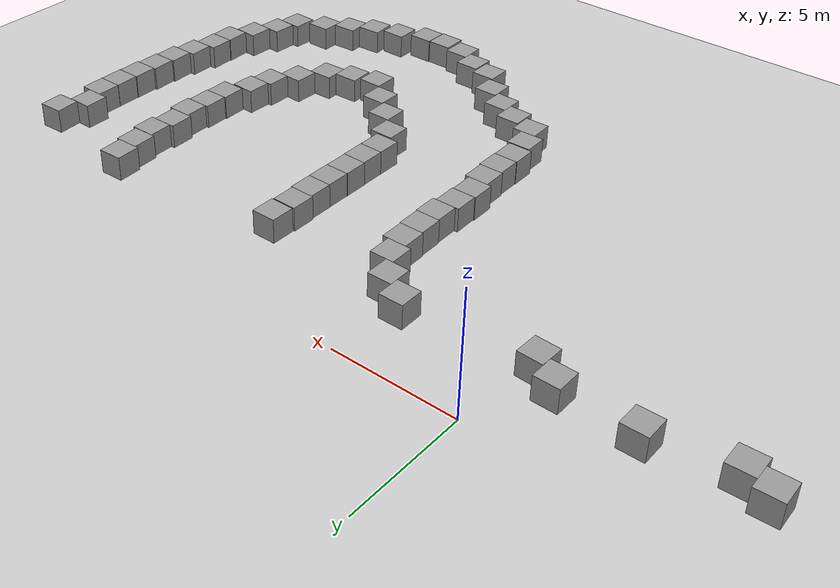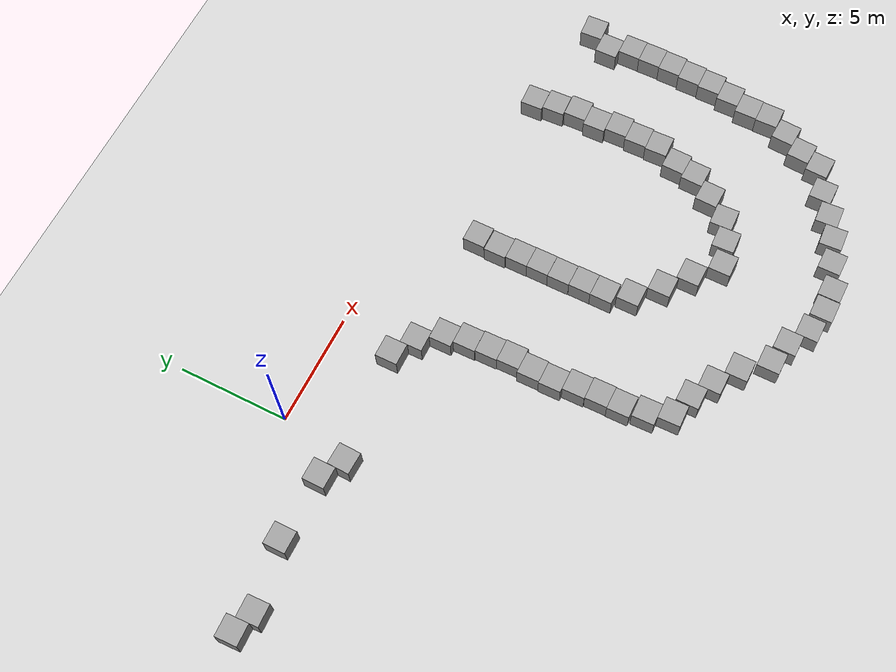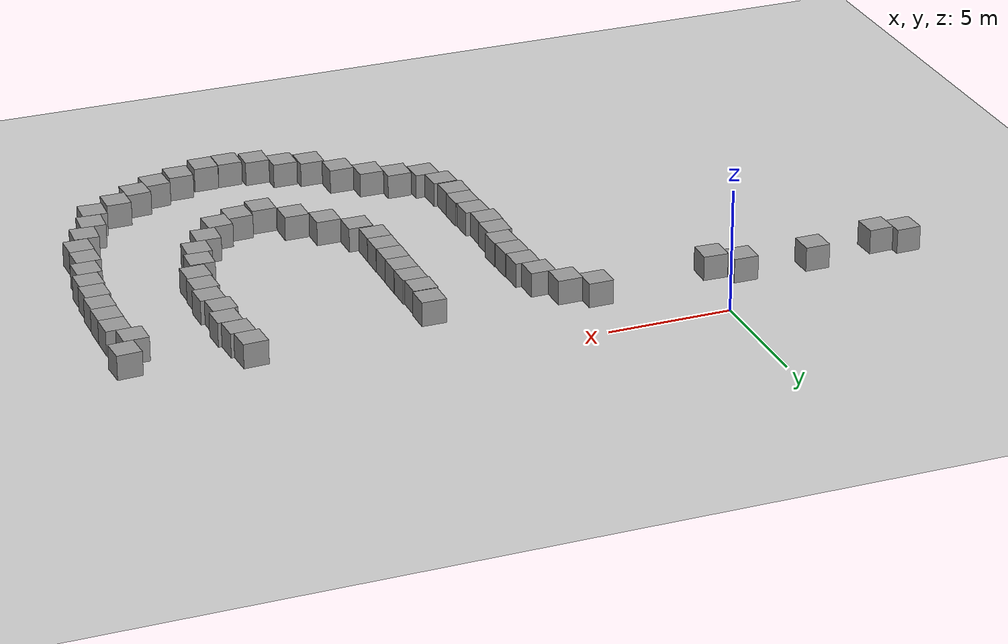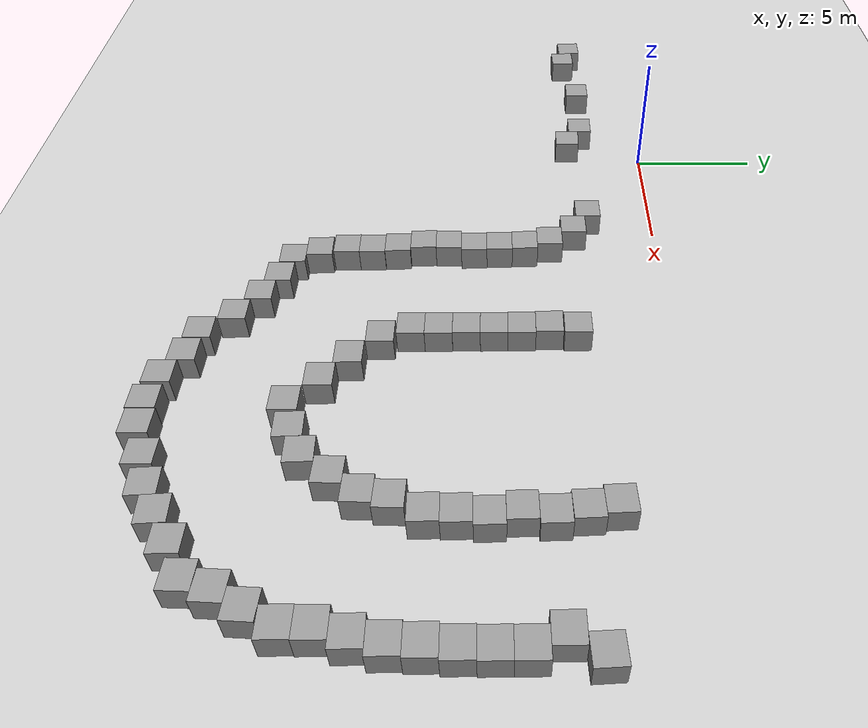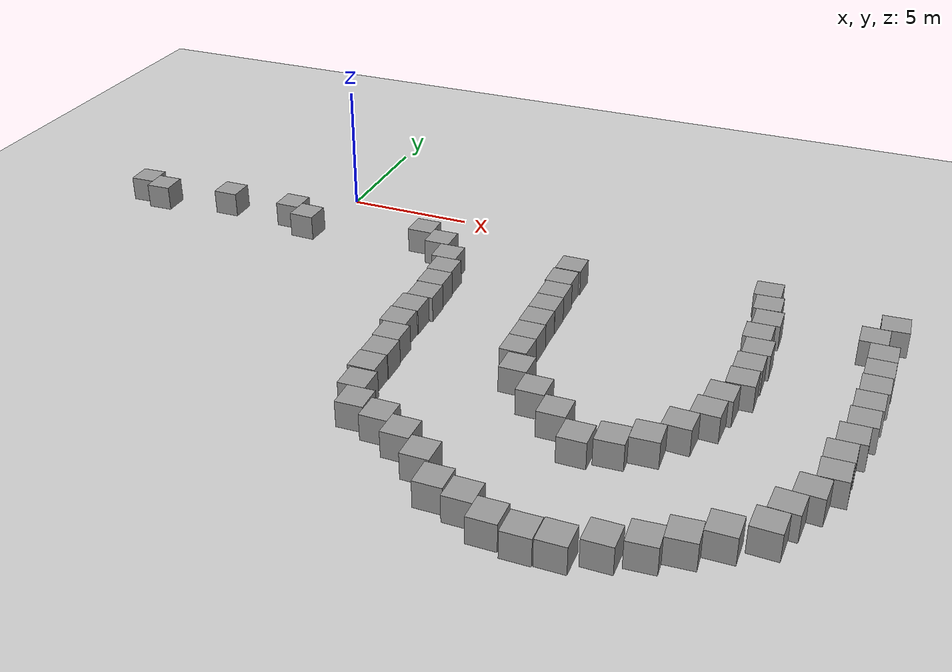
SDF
<sdf version="1.7">
 <world name="default">
  <model name="ground_plane">
   <static>1</static>
   <link name="link">
    <collision name="collision">
     <geometry><plane><normal>0 0 1</normal><size>100 100</size></plane></geometry>
     <surface>
      <contact><collide_bitmask>65535</collide_bitmask></contact>
      <friction><ode><mu>100</mu><mu2>50</mu2></ode></friction>
     </surface>
    </collision>
    <visual name="visual">
     <cast_shadows>0</cast_shadows>
     <geometry><plane><normal>0 0 1</normal><size>100 100</size></plane></geometry>
     <material>
      <script><uri>file://media/materials/scripts/gazebo.material</uri><name>Gazebo/Grey</name></script>
     </material>
    </visual>
   </link>
  </model>
  <model name="unit_box_5">
   <pose>-1.63227 -2.63169 0.5 0 0 -0.008028</pose>
   <link name="link">
    <inertial>
     <mass>1</mass>
     <inertia>
      <ixx>0.166667</ixx>
      <ixy>0</ixy>
      <ixz>0</ixz>
      <iyy>0.166667</iyy>
      <iyz>0</iyz>
      <izz>0.166667</izz>
     </inertia>
    </inertial>
    <collision name="collision"><geometry><box><size>1 1 1</size></box></geometry></collision>
    <visual name="visual">
     <geometry><box><size>1 1 1</size></box></geometry>
     <material>
      <script><name>Gazebo/Grey</name><uri>file://media/materials/scripts/gazebo.material</uri></script>
     </material>
    </visual>
   </link>
  </model>
  <model name="unit_box_16">
   <pose>4.39824 -2.70244 0.499995 -1e-05 -0 0.006225</pose>
   <link name="link">
    <inertial>
     <mass>1</mass>
     <inertia>
      <ixx>0.166667</ixx>
      <ixy>0</ixy>
      <ixz>0</ixz>
      <iyy>0.166667</iyy>
      <iyz>0</iyz>
      <izz>0.166667</izz>
     </inertia>
    </inertial>
    <collision name="collision"><geometry><box><size>1 1 1</size></box></geometry></collision>
    <visual name="visual">
     <geometry><box><size>1 1 1</size></box></geometry>
     <material>
      <script><name>Gazebo/Grey</name><uri>file://media/materials/scripts/gazebo.material</uri></script>
     </material>
    </visual>
   </link>
  </model>
  <model name="unit_box_17">
   <pose>5.40235 -3.34785 0.5 0 -0 0.006364</pose>
   <link name="link">
    <inertial>
     <mass>1</mass>
     <inertia>
      <ixx>0.166667</ixx>
      <ixy>0</ixy>
      <ixz>0</ixz>
      <iyy>0.166667</iyy>
      <iyz>0</iyz>
      <izz>0.166667</izz>
     </inertia>
    </inertial>
    <collision name="collision"><geometry><box><size>1 1 1</size></box></geometry></collision>
    <visual name="visual">
     <geometry><box><size>1 1 1</size></box></geometry>
     <material>
      <script><name>Gazebo/Grey</name><uri>file://media/materials/scripts/gazebo.material</uri></script>
     </material>
    </visual>
   </link>
  </model>
  <model name="unit_box_18">
   <pose>6.11715 -4.34222 0.5 0 -0 0.011712</pose>
   <link name="link">
    <inertial>
     <mass>1</mass>
     <inertia>
      <ixx>0.166667</ixx>
      <ixy>0</ixy>
      <ixz>0</ixz>
      <iyy>0.166667</iyy>
      <iyz>0</iyz>
      <izz>0.166667</izz>
     </inertia>
    </inertial>
    <collision name="collision"><geometry><box><size>1 1 1</size></box></geometry></collision>
    <visual name="visual">
     <geometry><box><size>1 1 1</size></box></geometry>
     <material>
      <script><name>Gazebo/Grey</name><uri>file://media/materials/scripts/gazebo.material</uri></script>
     </material>
    </visual>
   </link>
  </model>
  <model name="unit_box_19">
   <pose>6.3639 -5.3397 0.5 0 -0 0.011886</pose>
   <link name="link">
    <inertial>
     <mass>1</mass>
     <inertia>
      <ixx>0.166667</ixx>
      <ixy>0</ixy>
      <ixz>0</ixz>
      <iyy>0.166667</iyy>
      <iyz>0</iyz>
      <izz>0.166667</izz>
     </inertia>
    </inertial>
    <collision name="collision"><geometry><box><size>1 1 1</size></box></geometry></collision>
    <visual name="visual">
     <geometry><box><size>1 1 1</size></box></geometry>
     <material>
      <script><name>Gazebo/Grey</name><uri>file://media/materials/scripts/gazebo.material</uri></script>
     </material>
    </visual>
   </link>
  </model>
  <model name="unit_box_28">
   <pose>10.8726 -3.51528 0.5 0 0 -5e-06</pose>
   <link name="link">
    <inertial>
     <mass>1</mass>
     <inertia>
      <ixx>0.166667</ixx>
      <ixy>0</ixy>
      <ixz>0</ixz>
      <iyy>0.166667</iyy>
      <iyz>0</iyz>
      <izz>0.166667</izz>
     </inertia>
    </inertial>
    <collision name="collision"><geometry><box><size>1 1 1</size></box></geometry></collision>
    <visual name="visual">
     <geometry><box><size>1 1 1</size></box></geometry>
     <material>
      <script><name>Gazebo/Grey</name><uri>file://media/materials/scripts/gazebo.material</uri></script>
     </material>
    </visual>
   </link>
  </model>
  <model name="unit_box_29">
   <pose>10.8241 -4.54943 0.5 0 -0 0.000273</pose>
   <link name="link">
    <inertial>
     <mass>1</mass>
     <inertia>
      <ixx>0.166667</ixx>
      <ixy>0</ixy>
      <ixz>0</ixz>
      <iyy>0.166667</iyy>
      <iyz>0</iyz>
      <izz>0.166667</izz>
     </inertia>
    </inertial>
    <collision name="collision"><geometry><box><size>1 1 1</size></box></geometry></collision>
    <visual name="visual">
     <geometry><box><size>1 1 1</size></box></geometry>
     <material>
      <script><name>Gazebo/Grey</name><uri>file://media/materials/scripts/gazebo.material</uri></script>
     </material>
    </visual>
   </link>
  </model>
  <model name="unit_box_30">
   <pose>10.8797 -5.54946 0.5 0 -0 0.00022</pose>
   <link name="link">
    <inertial>
     <mass>1</mass>
     <inertia>
      <ixx>0.166667</ixx>
      <ixy>0</ixy>
      <ixz>0</ixz>
      <iyy>0.166667</iyy>
      <iyz>0</iyz>
      <izz>0.166667</izz>
     </inertia>
    </inertial>
    <collision name="collision"><geometry><box><size>1 1 1</size></box></geometry></collision>
    <visual name="visual">
     <geometry><box><size>1 1 1</size></box></geometry>
     <material>
      <script><name>Gazebo/Grey</name><uri>file://media/materials/scripts/gazebo.material</uri></script>
     </material>
    </visual>
   </link>
  </model>
  <model name="unit_box_31">
   <pose>6.41405 -6.33968 0.5 0 -0 0.012967</pose>
   <link name="link">
    <inertial>
     <mass>1</mass>
     <inertia>
      <ixx>0.166667</ixx>
      <ixy>0</ixy>
      <ixz>0</ixz>
      <iyy>0.166667</iyy>
      <iyz>0</iyz>
      <izz>0.166667</izz>
     </inertia>
    </inertial>
    <collision name="collision"><geometry><box><size>1 1 1</size></box></geometry></collision>
    <visual name="visual">
     <geometry><box><size>1 1 1</size></box></geometry>
     <material>
      <script><name>Gazebo/Grey</name><uri>file://media/materials/scripts/gazebo.material</uri></script>
     </material>
    </visual>
   </link>
  </model>
  <model name="unit_box_32">
   <pose>10.8891 -6.5495 0.5 0 -0 0.00017</pose>
   <link name="link">
    <inertial>
     <mass>1</mass>
     <inertia>
      <ixx>0.166667</ixx>
      <ixy>0</ixy>
      <ixz>0</ixz>
      <iyy>0.166667</iyy>
      <iyz>0</iyz>
      <izz>0.166667</izz>
     </inertia>
    </inertial>
    <collision name="collision"><geometry><box><size>1 1 1</size></box></geometry></collision>
    <visual name="visual">
     <geometry><box><size>1 1 1</size></box></geometry>
     <material>
      <script><name>Gazebo/Grey</name><uri>file://media/materials/scripts/gazebo.material</uri></script>
     </material>
    </visual>
   </link>
  </model>
  <model name="unit_box_33">
   <pose>6.46013 -7.33918 0.5 0 -0 0.01297</pose>
   <link name="link">
    <inertial>
     <mass>1</mass>
     <inertia>
      <ixx>0.166667</ixx>
      <ixy>0</ixy>
      <ixz>0</ixz>
      <iyy>0.166667</iyy>
      <iyz>0</iyz>
      <izz>0.166667</izz>
     </inertia>
    </inertial>
    <collision name="collision"><geometry><box><size>1 1 1</size></box></geometry></collision>
    <visual name="visual">
     <geometry><box><size>1 1 1</size></box></geometry>
     <material>
      <script><name>Gazebo/Grey</name><uri>file://media/materials/scripts/gazebo.material</uri></script>
     </material>
    </visual>
   </link>
  </model>
  <model name="unit_box_32_clone">
   <pose>6.33217 -8.34109 0.5 0 -0 0.013301</pose>
   <link name="link">
    <inertial>
     <mass>1</mass>
     <inertia>
      <ixx>0.166667</ixx>
      <ixy>0</ixy>
      <ixz>0</ixz>
      <iyy>0.166667</iyy>
      <iyz>0</iyz>
      <izz>0.166667</izz>
     </inertia>
    </inertial>
    <collision name="collision"><geometry><box><size>1 1 1</size></box></geometry></collision>
    <visual name="visual">
     <geometry><box><size>1 1 1</size></box></geometry>
     <material>
      <script><name>Gazebo/Grey</name><uri>file://media/materials/scripts/gazebo.material</uri></script>
     </material>
    </visual>
   </link>
  </model>
  <model name="unit_box_32_clone_0">
   <pose>10.8828 -7.54992 0.5 0 0 -0.000395</pose>
   <link name="link">
    <inertial>
     <mass>1</mass>
     <inertia>
      <ixx>0.166667</ixx>
      <ixy>0</ixy>
      <ixz>0</ixz>
      <iyy>0.166667</iyy>
      <iyz>0</iyz>
      <izz>0.166667</izz>
     </inertia>
    </inertial>
    <collision name="collision"><geometry><box><size>1 1 1</size></box></geometry></collision>
    <visual name="visual">
     <geometry><box><size>1 1 1</size></box></geometry>
     <material>
      <script><name>Gazebo/Grey</name><uri>file://media/materials/scripts/gazebo.material</uri></script>
     </material>
    </visual>
   </link>
  </model>
  <model name="unit_box_32_clone_1">
   <pose>6.30854 -9.34159 0.5 0 -0 0.013492</pose>
   <link name="link">
    <inertial>
     <mass>1</mass>
     <inertia>
      <ixx>0.166667</ixx>
      <ixy>0</ixy>
      <ixz>0</ixz>
      <iyy>0.166667</iyy>
      <iyz>0</iyz>
      <izz>0.166667</izz>
     </inertia>
    </inertial>
    <collision name="collision"><geometry><box><size>1 1 1</size></box></geometry></collision>
    <visual name="visual">
     <geometry><box><size>1 1 1</size></box></geometry>
     <material>
      <script><name>Gazebo/Grey</name><uri>file://media/materials/scripts/gazebo.material</uri></script>
     </material>
    </visual>
   </link>
  </model>
  <model name="unit_box_32_clone_2">
   <pose>6.49657 -10.3392 0.5 0 -0 0.013501</pose>
   <link name="link">
    <inertial>
     <mass>1</mass>
     <inertia>
      <ixx>0.166667</ixx>
      <ixy>0</ixy>
      <ixz>0</ixz>
      <iyy>0.166667</iyy>
      <iyz>0</iyz>
      <izz>0.166667</izz>
     </inertia>
    </inertial>
    <collision name="collision"><geometry><box><size>1 1 1</size></box></geometry></collision>
    <visual name="visual">
     <geometry><box><size>1 1 1</size></box></geometry>
     <material>
      <script><name>Gazebo/Grey</name><uri>file://media/materials/scripts/gazebo.material</uri></script>
     </material>
    </visual>
   </link>
  </model>
  <model name="unit_box_32_clone_3">
   <pose>10.8991 -8.55074 0.5 0 0 -0.001861</pose>
   <link name="link">
    <inertial>
     <mass>1</mass>
     <inertia>
      <ixx>0.166667</ixx>
      <ixy>0</ixy>
      <ixz>0</ixz>
      <iyy>0.166667</iyy>
      <iyz>0</iyz>
      <izz>0.166667</izz>
     </inertia>
    </inertial>
    <collision name="collision"><geometry><box><size>1 1 1</size></box></geometry></collision>
    <visual name="visual">
     <geometry><box><size>1 1 1</size></box></geometry>
     <material>
      <script><name>Gazebo/Grey</name><uri>file://media/materials/scripts/gazebo.material</uri></script>
     </material>
    </visual>
   </link>
  </model>
  <model name="unit_box_32_clone_4">
   <pose>10.8972 -9.55128 0.5 0 0 -0.002928</pose>
   <link name="link">
    <inertial>
     <mass>1</mass>
     <inertia>
      <ixx>0.166667</ixx>
      <ixy>0</ixy>
      <ixz>0</ixz>
      <iyy>0.166667</iyy>
      <iyz>0</iyz>
      <izz>0.166667</izz>
     </inertia>
    </inertial>
    <collision name="collision"><geometry><box><size>1 1 1</size></box></geometry></collision>
    <visual name="visual">
     <geometry><box><size>1 1 1</size></box></geometry>
     <material>
      <script><name>Gazebo/Grey</name><uri>file://media/materials/scripts/gazebo.material</uri></script>
     </material>
    </visual>
   </link>
  </model>
  <model name="unit_box_32_clone_5">
   <pose>6.55508 -11.3385 0.5 0 -0 0.013518</pose>
   <link name="link">
    <inertial>
     <mass>1</mass>
     <inertia>
      <ixx>0.166667</ixx>
      <ixy>0</ixy>
      <ixz>0</ixz>
      <iyy>0.166667</iyy>
      <iyz>0</iyz>
      <izz>0.166667</izz>
     </inertia>
    </inertial>
    <collision name="collision"><geometry><box><size>1 1 1</size></box></geometry></collision>
    <visual name="visual">
     <geometry><box><size>1 1 1</size></box></geometry>
     <material>
      <script><name>Gazebo/Grey</name><uri>file://media/materials/scripts/gazebo.material</uri></script>
     </material>
    </visual>
   </link>
  </model>
  <model name="unit_box_32_clone_6">
   <pose>11.276 -10.6109 0.5 0 -0 0.001319</pose>
   <link name="link">
    <inertial>
     <mass>1</mass>
     <inertia>
      <ixx>0.166667</ixx>
      <ixy>0</ixy>
      <ixz>0</ixz>
      <iyy>0.166667</iyy>
      <iyz>0</iyz>
      <izz>0.166667</izz>
     </inertia>
    </inertial>
    <collision name="collision"><geometry><box><size>1 1 1</size></box></geometry></collision>
    <visual name="visual">
     <geometry><box><size>1 1 1</size></box></geometry>
     <material>
      <script><name>Gazebo/Grey</name><uri>file://media/materials/scripts/gazebo.material</uri></script>
     </material>
    </visual>
   </link>
  </model>
  <model name="unit_box_32_clone_7">
   <pose>12.2553 -11.6331 0.5 0 -0 0.001319</pose>
   <link name="link">
    <inertial>
     <mass>1</mass>
     <inertia>
      <ixx>0.166667</ixx>
      <ixy>0</ixy>
      <ixz>0</ixz>
      <iyy>0.166667</iyy>
      <iyz>0</iyz>
      <izz>0.166667</izz>
     </inertia>
    </inertial>
    <collision name="collision"><geometry><box><size>1 1 1</size></box></geometry></collision>
    <visual name="visual">
     <geometry><box><size>1 1 1</size></box></geometry>
     <material>
      <script><name>Gazebo/Grey</name><uri>file://media/materials/scripts/gazebo.material</uri></script>
     </material>
    </visual>
   </link>
  </model>
  <model name="unit_box_32_clone_8">
   <pose>13.2773 -12.5272 0.5 0 -0 0.001319</pose>
   <link name="link">
    <inertial>
     <mass>1</mass>
     <inertia>
      <ixx>0.166667</ixx>
      <ixy>0</ixy>
      <ixz>0</ixz>
      <iyy>0.166667</iyy>
      <iyz>0</iyz>
      <izz>0.166667</izz>
     </inertia>
    </inertial>
    <collision name="collision"><geometry><box><size>1 1 1</size></box></geometry></collision>
    <visual name="visual">
     <geometry><box><size>1 1 1</size></box></geometry>
     <material>
      <script><name>Gazebo/Grey</name><uri>file://media/materials/scripts/gazebo.material</uri></script>
     </material>
    </visual>
   </link>
  </model>
  <model name="unit_box_32_clone_9">
   <pose>14.2987 -13.549 0.5 0 -0 0.001319</pose>
   <link name="link">
    <inertial>
     <mass>1</mass>
     <inertia>
      <ixx>0.166667</ixx>
      <ixy>0</ixy>
      <ixz>0</ixz>
      <iyy>0.166667</iyy>
      <iyz>0</iyz>
      <izz>0.166667</izz>
     </inertia>
    </inertial>
    <collision name="collision"><geometry><box><size>1 1 1</size></box></geometry></collision>
    <visual name="visual">
     <geometry><box><size>1 1 1</size></box></geometry>
     <material>
      <script><name>Gazebo/Grey</name><uri>file://media/materials/scripts/gazebo.material</uri></script>
     </material>
    </visual>
   </link>
  </model>
  <model name="unit_box_32_clone_10">
   <pose>15.3803 -13.2281 0.5 0 -0 0.040936</pose>
   <link name="link">
    <inertial>
     <mass>1</mass>
     <inertia>
      <ixx>0.166667</ixx>
      <ixy>0</ixy>
      <ixz>0</ixz>
      <iyy>0.166667</iyy>
      <iyz>0</iyz>
      <izz>0.166667</izz>
     </inertia>
    </inertial>
    <collision name="collision"><geometry><box><size>1 1 1</size></box></geometry></collision>
    <visual name="visual">
     <geometry><box><size>1 1 1</size></box></geometry>
     <material>
      <script><name>Gazebo/Grey</name><uri>file://media/materials/scripts/gazebo.material</uri></script>
     </material>
    </visual>
   </link>
  </model>
  <model name="unit_box_32_clone_11">
   <pose>16.3621 -12.7297 0.5 0 -0 0.038196</pose>
   <link name="link">
    <inertial>
     <mass>1</mass>
     <inertia>
      <ixx>0.166667</ixx>
      <ixy>0</ixy>
      <ixz>0</ixz>
      <iyy>0.166667</iyy>
      <iyz>0</iyz>
      <izz>0.166667</izz>
     </inertia>
    </inertial>
    <collision name="collision"><geometry><box><size>1 1 1</size></box></geometry></collision>
    <visual name="visual">
     <geometry><box><size>1 1 1</size></box></geometry>
     <material>
      <script><name>Gazebo/Grey</name><uri>file://media/materials/scripts/gazebo.material</uri></script>
     </material>
    </visual>
   </link>
  </model>
  <model name="unit_box_32_clone_12">
   <pose>17.1342 -11.7208 0.5 0 -0 -0.034855</pose>
   <link name="link">
    <inertial>
     <mass>1</mass>
     <inertia>
      <ixx>0.166667</ixx>
      <ixy>0</ixy>
      <ixz>0</ixz>
      <iyy>0.166667</iyy>
      <iyz>0</iyz>
      <izz>0.166667</izz>
     </inertia>
    </inertial>
    <collision name="collision"><geometry><box><size>1 1 1</size></box></geometry></collision>
    <visual name="visual">
     <geometry><box><size>1 1 1</size></box></geometry>
     <material>
      <script><name>Gazebo/Grey</name><uri>file://media/materials/scripts/gazebo.material</uri></script>
     </material>
    </visual>
   </link>
  </model>
  <model name="unit_box_32_clone_13">
   <pose>17.8095 -10.7409 0.5 0 0 -0.029257</pose>
   <link name="link">
    <inertial>
     <mass>1</mass>
     <inertia>
      <ixx>0.166667</ixx>
      <ixy>0</ixy>
      <ixz>0</ixz>
      <iyy>0.166667</iyy>
      <iyz>0</iyz>
      <izz>0.166667</izz>
     </inertia>
    </inertial>
    <collision name="collision"><geometry><box><size>1 1 1</size></box></geometry></collision>
    <visual name="visual">
     <geometry><box><size>1 1 1</size></box></geometry>
     <material>
      <script><name>Gazebo/Grey</name><uri>file://media/materials/scripts/gazebo.material</uri></script>
     </material>
    </visual>
   </link>
  </model>
  <model name="unit_box_32_clone_14">
   <pose>18.0046 -9.74617 0.5 0 0 -0.029231</pose>
   <link name="link">
    <inertial>
     <mass>1</mass>
     <inertia>
      <ixx>0.166667</ixx>
      <ixy>0</ixy>
      <ixz>0</ixz>
      <iyy>0.166667</iyy>
      <iyz>0</iyz>
      <izz>0.166667</izz>
     </inertia>
    </inertial>
    <collision name="collision"><geometry><box><size>1 1 1</size></box></geometry></collision>
    <visual name="visual">
     <geometry><box><size>1 1 1</size></box></geometry>
     <material>
      <script><name>Gazebo/Grey</name><uri>file://media/materials/scripts/gazebo.material</uri></script>
     </material>
    </visual>
   </link>
  </model>
  <model name="unit_box_32_clone_15">
   <pose>18.4737 -8.69085 0.5 0 -0 0.024066</pose>
   <link name="link">
    <inertial>
     <mass>1</mass>
     <inertia>
      <ixx>0.166667</ixx>
      <ixy>0</ixy>
      <ixz>0</ixz>
      <iyy>0.166667</iyy>
      <iyz>0</iyz>
      <izz>0.166667</izz>
     </inertia>
    </inertial>
    <collision name="collision"><geometry><box><size>1 1 1</size></box></geometry></collision>
    <visual name="visual">
     <geometry><box><size>1 1 1</size></box></geometry>
     <material>
      <script><name>Gazebo/Grey</name><uri>file://media/materials/scripts/gazebo.material</uri></script>
     </material>
    </visual>
   </link>
  </model>
  <model name="unit_box_32_clone_16">
   <pose>18.5018 -7.68973 0.5 0 -0 0.024358</pose>
   <link name="link">
    <inertial>
     <mass>1</mass>
     <inertia>
      <ixx>0.166667</ixx>
      <ixy>0</ixy>
      <ixz>0</ixz>
      <iyy>0.166667</iyy>
      <iyz>0</iyz>
      <izz>0.166667</izz>
     </inertia>
    </inertial>
    <collision name="collision"><geometry><box><size>1 1 1</size></box></geometry></collision>
    <visual name="visual">
     <geometry><box><size>1 1 1</size></box></geometry>
     <material>
      <script><name>Gazebo/Grey</name><uri>file://media/materials/scripts/gazebo.material</uri></script>
     </material>
    </visual>
   </link>
  </model>
  <model name="unit_box_32_clone_17">
   <pose>18.5887 -6.68717 0.5 0 -0 0.024653</pose>
   <link name="link">
    <inertial>
     <mass>1</mass>
     <inertia>
      <ixx>0.166667</ixx>
      <ixy>0</ixy>
      <ixz>0</ixz>
      <iyy>0.166667</iyy>
      <iyz>0</iyz>
      <izz>0.166667</izz>
     </inertia>
    </inertial>
    <collision name="collision"><geometry><box><size>1 1 1</size></box></geometry></collision>
    <visual name="visual">
     <geometry><box><size>1 1 1</size></box></geometry>
     <material>
      <script><name>Gazebo/Grey</name><uri>file://media/materials/scripts/gazebo.material</uri></script>
     </material>
    </visual>
   </link>
  </model>
  <model name="unit_box_32_clone_18">
   <pose>18.4092 -5.69055 0.5 0 -0 0.026812</pose>
   <link name="link">
    <inertial>
     <mass>1</mass>
     <inertia>
      <ixx>0.166667</ixx>
      <ixy>0</ixy>
      <ixz>0</ixz>
      <iyy>0.166667</iyy>
      <iyz>0</iyz>
      <izz>0.166667</izz>
     </inertia>
    </inertial>
    <collision name="collision"><geometry><box><size>1 1 1</size></box></geometry></collision>
    <visual name="visual">
     <geometry><box><size>1 1 1</size></box></geometry>
     <material>
      <script><name>Gazebo/Grey</name><uri>file://media/materials/scripts/gazebo.material</uri></script>
     </material>
    </visual>
   </link>
  </model>
  <model name="unit_box_32_clone_19">
   <pose>18.5446 -4.68621 0.499995 0 -1e-05 0.02749</pose>
   <link name="link">
    <inertial>
     <mass>1</mass>
     <inertia>
      <ixx>0.166667</ixx>
      <ixy>0</ixy>
      <ixz>0</ixz>
      <iyy>0.166667</iyy>
      <iyz>0</iyz>
      <izz>0.166667</izz>
     </inertia>
    </inertial>
    <collision name="collision"><geometry><box><size>1 1 1</size></box></geometry></collision>
    <visual name="visual">
     <geometry><box><size>1 1 1</size></box></geometry>
     <material>
      <script><name>Gazebo/Grey</name><uri>file://media/materials/scripts/gazebo.material</uri></script>
     </material>
    </visual>
   </link>
  </model>
  <model name="unit_box_32_clone_20">
   <pose>18.3758 -3.68444 0.5 0 -0 0.044105</pose>
   <link name="link">
    <inertial>
     <mass>1</mass>
     <inertia>
      <ixx>0.166667</ixx>
      <ixy>0</ixy>
      <ixz>0</ixz>
      <iyy>0.166667</iyy>
      <iyz>0</iyz>
      <izz>0.166667</izz>
     </inertia>
    </inertial>
    <collision name="collision"><geometry><box><size>1 1 1</size></box></geometry></collision>
    <visual name="visual">
     <geometry><box><size>1 1 1</size></box></geometry>
     <material>
      <script><name>Gazebo/Grey</name><uri>file://media/materials/scripts/gazebo.material</uri></script>
     </material>
    </visual>
   </link>
  </model>
  <model name="unit_box_32_clone_21">
   <pose>18.204 -2.69102 0.5 0 -0 0.044183</pose>
   <link name="link">
    <inertial>
     <mass>1</mass>
     <inertia>
      <ixx>0.166667</ixx>
      <ixy>0</ixy>
      <ixz>0</ixz>
      <iyy>0.166667</iyy>
      <iyz>0</iyz>
      <izz>0.166667</izz>
     </inertia>
    </inertial>
    <collision name="collision"><geometry><box><size>1 1 1</size></box></geometry></collision>
    <visual name="visual">
     <geometry><box><size>1 1 1</size></box></geometry>
     <material>
      <script><name>Gazebo/Grey</name><uri>file://media/materials/scripts/gazebo.material</uri></script>
     </material>
    </visual>
   </link>
  </model>
  <model name="unit_box_32_clone_34">
   <pose>6.54787 -12.3387 0.5 0 -0 0.013521</pose>
   <link name="link">
    <inertial>
     <mass>1</mass>
     <inertia>
      <ixx>0.166667</ixx>
      <ixy>0</ixy>
      <ixz>0</ixz>
      <iyy>0.166667</iyy>
      <iyz>0</iyz>
      <izz>0.166667</izz>
     </inertia>
    </inertial>
    <collision name="collision"><geometry><box><size>1 1 1</size></box></geometry></collision>
    <visual name="visual">
     <geometry><box><size>1 1 1</size></box></geometry>
     <material>
      <script><name>Gazebo/Grey</name><uri>file://media/materials/scripts/gazebo.material</uri></script>
     </material>
    </visual>
   </link>
  </model>
  <model name="unit_box_32_clone_35">
   <pose>6.70579 -13.3841 0.5 0 -0 0.026314</pose>
   <link name="link">
    <inertial>
     <mass>1</mass>
     <inertia>
      <ixx>0.166667</ixx>
      <ixy>0</ixy>
      <ixz>0</ixz>
      <iyy>0.166667</iyy>
      <iyz>0</iyz>
      <izz>0.166667</izz>
     </inertia>
    </inertial>
    <collision name="collision"><geometry><box><size>1 1 1</size></box></geometry></collision>
    <visual name="visual">
     <geometry><box><size>1 1 1</size></box></geometry>
     <material>
      <script><name>Gazebo/Grey</name><uri>file://media/materials/scripts/gazebo.material</uri></script>
     </material>
    </visual>
   </link>
  </model>
  <model name="unit_box_32_clone_36">
   <pose>7.11068 -14.374 0.5 0 -0 0.026303</pose>
   <link name="link">
    <inertial>
     <mass>1</mass>
     <inertia>
      <ixx>0.166667</ixx>
      <ixy>0</ixy>
      <ixz>0</ixz>
      <iyy>0.166667</iyy>
      <iyz>0</iyz>
      <izz>0.166667</izz>
     </inertia>
    </inertial>
    <collision name="collision"><geometry><box><size>1 1 1</size></box></geometry></collision>
    <visual name="visual">
     <geometry><box><size>1 1 1</size></box></geometry>
     <material>
      <script><name>Gazebo/Grey</name><uri>file://media/materials/scripts/gazebo.material</uri></script>
     </material>
    </visual>
   </link>
  </model>
  <model name="unit_box_32_clone_37">
   <pose>8.15582 -14.7487 0.5 0 0 -0.004918</pose>
   <link name="link">
    <inertial>
     <mass>1</mass>
     <inertia>
      <ixx>0.166667</ixx>
      <ixy>0</ixy>
      <ixz>0</ixz>
      <iyy>0.166667</iyy>
      <iyz>0</iyz>
      <izz>0.166667</izz>
     </inertia>
    </inertial>
    <collision name="collision"><geometry><box><size>1 1 1</size></box></geometry></collision>
    <visual name="visual">
     <geometry><box><size>1 1 1</size></box></geometry>
     <material>
      <script><name>Gazebo/Grey</name><uri>file://media/materials/scripts/gazebo.material</uri></script>
     </material>
    </visual>
   </link>
  </model>
  <model name="unit_box_32_clone_38">
   <pose>9.15311 -15.3083 0.5 0 -0 -0.004922</pose>
   <link name="link">
    <inertial>
     <mass>1</mass>
     <inertia>
      <ixx>0.166667</ixx>
      <ixy>0</ixy>
      <ixz>0</ixz>
      <iyy>0.166667</iyy>
      <iyz>0</iyz>
      <izz>0.166667</izz>
     </inertia>
    </inertial>
    <collision name="collision"><geometry><box><size>1 1 1</size></box></geometry></collision>
    <visual name="visual">
     <geometry><box><size>1 1 1</size></box></geometry>
     <material>
      <script><name>Gazebo/Grey</name><uri>file://media/materials/scripts/gazebo.material</uri></script>
     </material>
    </visual>
   </link>
  </model>
  <model name="unit_box_32_clone_39">
   <pose>10.1652 -16.0712 0.5 0 -0 0.001319</pose>
   <link name="link">
    <inertial>
     <mass>1</mass>
     <inertia>
      <ixx>0.166667</ixx>
      <ixy>0</ixy>
      <ixz>0</ixz>
      <iyy>0.166667</iyy>
      <iyz>0</iyz>
      <izz>0.166667</izz>
     </inertia>
    </inertial>
    <collision name="collision"><geometry><box><size>1 1 1</size></box></geometry></collision>
    <visual name="visual">
     <geometry><box><size>1 1 1</size></box></geometry>
     <material>
      <script><name>Gazebo/Grey</name><uri>file://media/materials/scripts/gazebo.material</uri></script>
     </material>
    </visual>
   </link>
  </model>
  <model name="unit_box_32_clone_40">
   <pose>11.0593 -17.1359 0.5 0 -0 0.001319</pose>
   <link name="link">
    <inertial>
     <mass>1</mass>
     <inertia>
      <ixx>0.166667</ixx>
      <ixy>0</ixy>
      <ixz>0</ixz>
      <iyy>0.166667</iyy>
      <iyz>0</iyz>
      <izz>0.166667</izz>
     </inertia>
    </inertial>
    <collision name="collision"><geometry><box><size>1 1 1</size></box></geometry></collision>
    <visual name="visual">
     <geometry><box><size>1 1 1</size></box></geometry>
     <material>
      <script><name>Gazebo/Grey</name><uri>file://media/materials/scripts/gazebo.material</uri></script>
     </material>
    </visual>
   </link>
  </model>
  <model name="unit_box_32_clone_41">
   <pose>12.1154 -17.4308 0.5 -0 -0 -0.005262</pose>
   <link name="link">
    <inertial>
     <mass>1</mass>
     <inertia>
      <ixx>0.166667</ixx>
      <ixy>0</ixy>
      <ixz>0</ixz>
      <iyy>0.166667</iyy>
      <iyz>0</iyz>
      <izz>0.166667</izz>
     </inertia>
    </inertial>
    <collision name="collision"><geometry><box><size>1 1 1</size></box></geometry></collision>
    <visual name="visual">
     <geometry><box><size>1 1 1</size></box></geometry>
     <material>
      <script><name>Gazebo/Grey</name><uri>file://media/materials/scripts/gazebo.material</uri></script>
     </material>
    </visual>
   </link>
  </model>
  <model name="unit_box_32_clone_42">
   <pose>13.1122 -18.0332 0.5 0 0 -0.005262</pose>
   <link name="link">
    <inertial>
     <mass>1</mass>
     <inertia>
      <ixx>0.166667</ixx>
      <ixy>0</ixy>
      <ixz>0</ixz>
      <iyy>0.166667</iyy>
      <iyz>0</iyz>
      <izz>0.166667</izz>
     </inertia>
    </inertial>
    <collision name="collision"><geometry><box><size>1 1 1</size></box></geometry></collision>
    <visual name="visual">
     <geometry><box><size>1 1 1</size></box></geometry>
     <material>
      <script><name>Gazebo/Grey</name><uri>file://media/materials/scripts/gazebo.material</uri></script>
     </material>
    </visual>
   </link>
  </model>
  <model name="unit_box_32_clone_43">
   <pose>14.2105 -18.2423 0.5 0 -0 0.001319</pose>
   <link name="link">
    <inertial>
     <mass>1</mass>
     <inertia>
      <ixx>0.166667</ixx>
      <ixy>0</ixy>
      <ixz>0</ixz>
      <iyy>0.166667</iyy>
      <iyz>0</iyz>
      <izz>0.166667</izz>
     </inertia>
    </inertial>
    <collision name="collision"><geometry><box><size>1 1 1</size></box></geometry></collision>
    <visual name="visual">
     <geometry><box><size>1 1 1</size></box></geometry>
     <material>
      <script><name>Gazebo/Grey</name><uri>file://media/materials/scripts/gazebo.material</uri></script>
     </material>
    </visual>
   </link>
  </model>
  <model name="unit_box_32_clone_44">
   <pose>15.2317 -18.2004 0.5 0 -0 0.001319</pose>
   <link name="link">
    <inertial>
     <mass>1</mass>
     <inertia>
      <ixx>0.166667</ixx>
      <ixy>0</ixy>
      <ixz>0</ixz>
      <iyy>0.166667</iyy>
      <iyz>0</iyz>
      <izz>0.166667</izz>
     </inertia>
    </inertial>
    <collision name="collision"><geometry><box><size>1 1 1</size></box></geometry></collision>
    <visual name="visual">
     <geometry><box><size>1 1 1</size></box></geometry>
     <material>
      <script><name>Gazebo/Grey</name><uri>file://media/materials/scripts/gazebo.material</uri></script>
     </material>
    </visual>
   </link>
  </model>
  <model name="unit_box_32_clone_45">
   <pose>16.4238 -17.732 0.5 0 -0 0.001319</pose>
   <link name="link">
    <inertial>
     <mass>1</mass>
     <inertia>
      <ixx>0.166667</ixx>
      <ixy>0</ixy>
      <ixz>0</ixz>
      <iyy>0.166667</iyy>
      <iyz>0</iyz>
      <izz>0.166667</izz>
     </inertia>
    </inertial>
    <collision name="collision"><geometry><box><size>1 1 1</size></box></geometry></collision>
    <visual name="visual">
     <geometry><box><size>1 1 1</size></box></geometry>
     <material>
      <script><name>Gazebo/Grey</name><uri>file://media/materials/scripts/gazebo.material</uri></script>
     </material>
    </visual>
   </link>
  </model>
  <model name="unit_box_32_clone_46">
   <pose>17.5358 -17.3314 0.5 0 -0 0.062716</pose>
   <link name="link">
    <inertial>
     <mass>1</mass>
     <inertia>
      <ixx>0.166667</ixx>
      <ixy>0</ixy>
      <ixz>0</ixz>
      <iyy>0.166667</iyy>
      <iyz>0</iyz>
      <izz>0.166667</izz>
     </inertia>
    </inertial>
    <collision name="collision"><geometry><box><size>1 1 1</size></box></geometry></collision>
    <visual name="visual">
     <geometry><box><size>1 1 1</size></box></geometry>
     <material>
      <script><name>Gazebo/Grey</name><uri>file://media/materials/scripts/gazebo.material</uri></script>
     </material>
    </visual>
   </link>
  </model>
  <model name="unit_box_32_clone_47">
   <pose>18.5028 -16.7713 0.5 0 -0 0.06237</pose>
   <link name="link">
    <inertial>
     <mass>1</mass>
     <inertia>
      <ixx>0.166667</ixx>
      <ixy>0</ixy>
      <ixz>0</ixz>
      <iyy>0.166667</iyy>
      <iyz>0</iyz>
      <izz>0.166667</izz>
     </inertia>
    </inertial>
    <collision name="collision"><geometry><box><size>1 1 1</size></box></geometry></collision>
    <visual name="visual">
     <geometry><box><size>1 1 1</size></box></geometry>
     <material>
      <script><name>Gazebo/Grey</name><uri>file://media/materials/scripts/gazebo.material</uri></script>
     </material>
    </visual>
   </link>
  </model>
  <model name="unit_box_32_clone_48">
   <pose>19.4916 -16.1134 0.5 0 -0 0.004881</pose>
   <link name="link">
    <inertial>
     <mass>1</mass>
     <inertia>
      <ixx>0.166667</ixx>
      <ixy>0</ixy>
      <ixz>0</ixz>
      <iyy>0.166667</iyy>
      <iyz>0</iyz>
      <izz>0.166667</izz>
     </inertia>
    </inertial>
    <collision name="collision"><geometry><box><size>1 1 1</size></box></geometry></collision>
    <visual name="visual">
     <geometry><box><size>1 1 1</size></box></geometry>
     <material>
      <script><name>Gazebo/Grey</name><uri>file://media/materials/scripts/gazebo.material</uri></script>
     </material>
    </visual>
   </link>
  </model>
  <model name="unit_box_32_clone_49">
   <pose>20.6351 -15.4988 0.5 0 -0 -0.037521</pose>
   <link name="link">
    <inertial>
     <mass>1</mass>
     <inertia>
      <ixx>0.166667</ixx>
      <ixy>0</ixy>
      <ixz>0</ixz>
      <iyy>0.166667</iyy>
      <iyz>0</iyz>
      <izz>0.166667</izz>
     </inertia>
    </inertial>
    <collision name="collision"><geometry><box><size>1 1 1</size></box></geometry></collision>
    <visual name="visual">
     <geometry><box><size>1 1 1</size></box></geometry>
     <material>
      <script><name>Gazebo/Grey</name><uri>file://media/materials/scripts/gazebo.material</uri></script>
     </material>
    </visual>
   </link>
  </model>
  <model name="unit_box_32_clone_50">
   <pose>20.9671 -14.5061 0.499995 0 1e-05 -0.05792</pose>
   <link name="link">
    <inertial>
     <mass>1</mass>
     <inertia>
      <ixx>0.166667</ixx>
      <ixy>0</ixy>
      <ixz>0</ixz>
      <iyy>0.166667</iyy>
      <iyz>0</iyz>
      <izz>0.166667</izz>
     </inertia>
    </inertial>
    <collision name="collision"><geometry><box><size>1 1 1</size></box></geometry></collision>
    <visual name="visual">
     <geometry><box><size>1 1 1</size></box></geometry>
     <material>
      <script><name>Gazebo/Grey</name><uri>file://media/materials/scripts/gazebo.material</uri></script>
     </material>
    </visual>
   </link>
  </model>
  <model name="unit_box_32_clone_51">
   <pose>21.5138 -13.5361 0.5 0 -0 -0.057784</pose>
   <link name="link">
    <inertial>
     <mass>1</mass>
     <inertia>
      <ixx>0.166667</ixx>
      <ixy>0</ixy>
      <ixz>0</ixz>
      <iyy>0.166667</iyy>
      <iyz>0</iyz>
      <izz>0.166667</izz>
     </inertia>
    </inertial>
    <collision name="collision"><geometry><box><size>1 1 1</size></box></geometry></collision>
    <visual name="visual">
     <geometry><box><size>1 1 1</size></box></geometry>
     <material>
      <script><name>Gazebo/Grey</name><uri>file://media/materials/scripts/gazebo.material</uri></script>
     </material>
    </visual>
   </link>
  </model>
  <model name="unit_box_32_clone_52">
   <pose>22.0224 -12.5297 0.499995 -0 -1e-05 0.012857</pose>
   <link name="link">
    <inertial>
     <mass>1</mass>
     <inertia>
      <ixx>0.166667</ixx>
      <ixy>0</ixy>
      <ixz>0</ixz>
      <iyy>0.166667</iyy>
      <iyz>0</iyz>
      <izz>0.166667</izz>
     </inertia>
    </inertial>
    <collision name="collision"><geometry><box><size>1 1 1</size></box></geometry></collision>
    <visual name="visual">
     <geometry><box><size>1 1 1</size></box></geometry>
     <material>
      <script><name>Gazebo/Grey</name><uri>file://media/materials/scripts/gazebo.material</uri></script>
     </material>
    </visual>
   </link>
  </model>
  <model name="unit_box_32_clone_53">
   <pose>22.0383 -11.5294 0.5 0 -0 0.012966</pose>
   <link name="link">
    <inertial>
     <mass>1</mass>
     <inertia>
      <ixx>0.166667</ixx>
      <ixy>0</ixy>
      <ixz>0</ixz>
      <iyy>0.166667</iyy>
      <iyz>0</iyz>
      <izz>0.166667</izz>
     </inertia>
    </inertial>
    <collision name="collision"><geometry><box><size>1 1 1</size></box></geometry></collision>
    <visual name="visual">
     <geometry><box><size>1 1 1</size></box></geometry>
     <material>
      <script><name>Gazebo/Grey</name><uri>file://media/materials/scripts/gazebo.material</uri></script>
     </material>
    </visual>
   </link>
  </model>
  <model name="unit_box_32_clone_54">
   <pose>22.2839 -10.5261 0.5 0 -0 0.012987</pose>
   <link name="link">
    <inertial>
     <mass>1</mass>
     <inertia>
      <ixx>0.166667</ixx>
      <ixy>0</ixy>
      <ixz>0</ixz>
      <iyy>0.166667</iyy>
      <iyz>0</iyz>
      <izz>0.166667</izz>
     </inertia>
    </inertial>
    <collision name="collision"><geometry><box><size>1 1 1</size></box></geometry></collision>
    <visual name="visual">
     <geometry><box><size>1 1 1</size></box></geometry>
     <material>
      <script><name>Gazebo/Grey</name><uri>file://media/materials/scripts/gazebo.material</uri></script>
     </material>
    </visual>
   </link>
  </model>
  <model name="unit_box_32_clone_55">
   <pose>22.4808 -9.52326 0.499995 0 1e-05 0.013343</pose>
   <link name="link">
    <inertial>
     <mass>1</mass>
     <inertia>
      <ixx>0.166667</ixx>
      <ixy>0</ixy>
      <ixz>0</ixz>
      <iyy>0.166667</iyy>
      <iyz>0</iyz>
      <izz>0.166667</izz>
     </inertia>
    </inertial>
    <collision name="collision"><geometry><box><size>1 1 1</size></box></geometry></collision>
    <visual name="visual">
     <geometry><box><size>1 1 1</size></box></geometry>
     <material>
      <script><name>Gazebo/Grey</name><uri>file://media/materials/scripts/gazebo.material</uri></script>
     </material>
    </visual>
   </link>
  </model>
  <model name="unit_box_32_clone_56">
   <pose>22.5303 -8.52251 0.5 0 -0 0.013348</pose>
   <link name="link">
    <inertial>
     <mass>1</mass>
     <inertia>
      <ixx>0.166667</ixx>
      <ixy>0</ixy>
      <ixz>0</ixz>
      <iyy>0.166667</iyy>
      <iyz>0</iyz>
      <izz>0.166667</izz>
     </inertia>
    </inertial>
    <collision name="collision"><geometry><box><size>1 1 1</size></box></geometry></collision>
    <visual name="visual">
     <geometry><box><size>1 1 1</size></box></geometry>
     <material>
      <script><name>Gazebo/Grey</name><uri>file://media/materials/scripts/gazebo.material</uri></script>
     </material>
    </visual>
   </link>
  </model>
  <model name="unit_box_32_clone_57">
   <pose>22.5993 -7.52149 0.499995 1e-05 -0 0.013366</pose>
   <link name="link">
    <inertial>
     <mass>1</mass>
     <inertia>
      <ixx>0.166667</ixx>
      <ixy>0</ixy>
      <ixz>0</ixz>
      <iyy>0.166667</iyy>
      <iyz>0</iyz>
      <izz>0.166667</izz>
     </inertia>
    </inertial>
    <collision name="collision"><geometry><box><size>1 1 1</size></box></geometry></collision>
    <visual name="visual">
     <geometry><box><size>1 1 1</size></box></geometry>
     <material>
      <script><name>Gazebo/Grey</name><uri>file://media/materials/scripts/gazebo.material</uri></script>
     </material>
    </visual>
   </link>
  </model>
  <model name="unit_box_32_clone_58">
   <pose>22.6161 -6.52117 0.5 0 -0 0.013366</pose>
   <link name="link">
    <inertial>
     <mass>1</mass>
     <inertia>
      <ixx>0.166667</ixx>
      <ixy>0</ixy>
      <ixz>0</ixz>
      <iyy>0.166667</iyy>
      <iyz>0</iyz>
      <izz>0.166667</izz>
     </inertia>
    </inertial>
    <collision name="collision"><geometry><box><size>1 1 1</size></box></geometry></collision>
    <visual name="visual">
     <geometry><box><size>1 1 1</size></box></geometry>
     <material>
      <script><name>Gazebo/Grey</name><uri>file://media/materials/scripts/gazebo.material</uri></script>
     </material>
    </visual>
   </link>
  </model>
  <model name="unit_box_32_clone_59">
   <pose>22.6118 -5.52114 0.5 0 -0 0.01337</pose>
   <link name="link">
    <inertial>
     <mass>1</mass>
     <inertia>
      <ixx>0.166667</ixx>
      <ixy>0</ixy>
      <ixz>0</ixz>
      <iyy>0.166667</iyy>
      <iyz>0</iyz>
      <izz>0.166667</izz>
     </inertia>
    </inertial>
    <collision name="collision"><geometry><box><size>1 1 1</size></box></geometry></collision>
    <visual name="visual">
     <geometry><box><size>1 1 1</size></box></geometry>
     <material>
      <script><name>Gazebo/Grey</name><uri>file://media/materials/scripts/gazebo.material</uri></script>
     </material>
    </visual>
   </link>
  </model>
  <model name="unit_box_32_clone_60">
   <pose>22.2105 -4.52638 0.499996 -0 -7e-06 0.013345</pose>
   <link name="link">
    <inertial>
     <mass>1</mass>
     <inertia>
      <ixx>0.166667</ixx>
      <ixy>0</ixy>
      <ixz>0</ixz>
      <iyy>0.166667</iyy>
      <iyz>0</iyz>
      <izz>0.166667</izz>
     </inertia>
    </inertial>
    <collision name="collision"><geometry><box><size>1 1 1</size></box></geometry></collision>
    <visual name="visual">
     <geometry><box><size>1 1 1</size></box></geometry>
     <material>
      <script><name>Gazebo/Grey</name><uri>file://media/materials/scripts/gazebo.material</uri></script>
     </material>
    </visual>
   </link>
  </model>
  <model name="unit_box_32_clone_61">
   <pose>22.8022 -3.49876 0.5 2e-06 -1e-06 0.053426</pose>
   <link name="link">
    <inertial>
     <mass>1</mass>
     <inertia>
      <ixx>0.166667</ixx>
      <ixy>0</ixy>
      <ixz>0</ixz>
      <iyy>0.166667</iyy>
      <iyz>0</iyz>
      <izz>0.166667</izz>
     </inertia>
    </inertial>
    <collision name="collision"><geometry><box><size>1 1 1</size></box></geometry></collision>
    <visual name="visual">
     <geometry><box><size>1 1 1</size></box></geometry>
     <material>
      <script><name>Gazebo/Grey</name><uri>file://media/materials/scripts/gazebo.material</uri></script>
     </material>
    </visual>
   </link>
  </model>
  <model name="unit_box_32_clone_33_clone_clone_20_clone_38">
   <pose>-8.64212 -2.7303 0.5 0 -0 0.032552</pose>
   <link name="link">
    <inertial>
     <mass>1</mass>
     <inertia>
      <ixx>0.166667</ixx>
      <ixy>0</ixy>
      <ixz>0</ixz>
      <iyy>0.166667</iyy>
      <iyz>0</iyz>
      <izz>0.166667</izz>
     </inertia>
    </inertial>
    <collision name="collision"><geometry><box><size>1 1 1</size></box></geometry></collision>
    <visual name="visual">
     <geometry><box><size>1 1 1</size></box></geometry>
     <material>
      <script><name>Gazebo/Grey</name><uri>file://media/materials/scripts/gazebo.material</uri></script>
     </material>
    </visual>
   </link>
  </model>
  <model name="unit_box_32_clone_33_clone_clone_20_clone_39">
   <pose>-7.63001 -3.08537 0.5 0 -0 0.032579</pose>
   <link name="link">
    <inertial>
     <mass>1</mass>
     <inertia>
      <ixx>0.166667</ixx>
      <ixy>0</ixy>
      <ixz>0</ixz>
      <iyy>0.166667</iyy>
      <iyz>0</iyz>
      <izz>0.166667</izz>
     </inertia>
    </inertial>
    <collision name="collision"><geometry><box><size>1 1 1</size></box></geometry></collision>
    <visual name="visual">
     <geometry><box><size>1 1 1</size></box></geometry>
     <material>
      <script><name>Gazebo/Grey</name><uri>file://media/materials/scripts/gazebo.material</uri></script>
     </material>
    </visual>
   </link>
  </model>
  <model name="unit_box_32_clone_33_clone_clone_20_clone_42">
   <pose>-4.63755 -2.56022 0.5 0 -0 0.003295</pose>
   <link name="link">
    <inertial>
     <mass>1</mass>
     <inertia>
      <ixx>0.166667</ixx>
      <ixy>0</ixy>
      <ixz>0</ixz>
      <iyy>0.166667</iyy>
      <iyz>0</iyz>
      <izz>0.166667</izz>
     </inertia>
    </inertial>
    <collision name="collision"><geometry><box><size>1 1 1</size></box></geometry></collision>
    <visual name="visual">
     <geometry><box><size>1 1 1</size></box></geometry>
     <material>
      <script><name>Gazebo/Grey</name><uri>file://media/materials/scripts/gazebo.material</uri></script>
     </material>
    </visual>
   </link>
  </model>
  <model name="unit_box_32_clone_33_clone_clone_20_clone_43">
   <pose>-0.639508 -3.2451 0.5 -0 -0 -0.033439</pose>
   <link name="link">
    <inertial>
     <mass>1</mass>
     <inertia>
      <ixx>0.166667</ixx>
      <ixy>0</ixy>
      <ixz>0</ixz>
      <iyy>0.166667</iyy>
      <iyz>0</iyz>
      <izz>0.166667</izz>
     </inertia>
    </inertial>
    <collision name="collision"><geometry><box><size>1 1 1</size></box></geometry></collision>
    <visual name="visual">
     <geometry><box><size>1 1 1</size></box></geometry>
     <material>
      <script><name>Gazebo/Grey</name><uri>file://media/materials/scripts/gazebo.material</uri></script>
     </material>
    </visual>
   </link>
  </model>
 </world>
</sdf>
